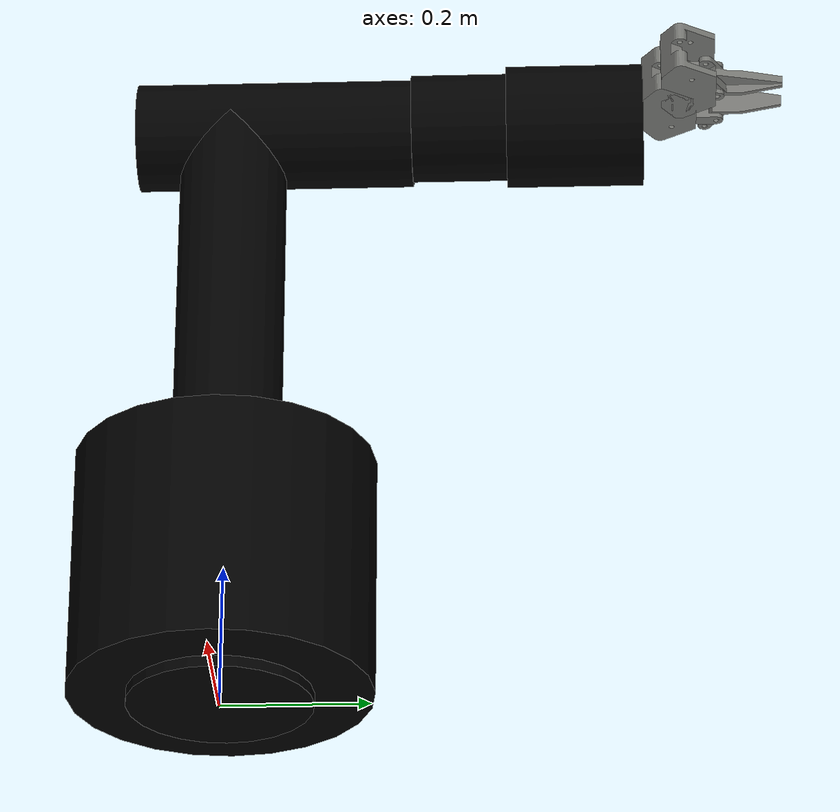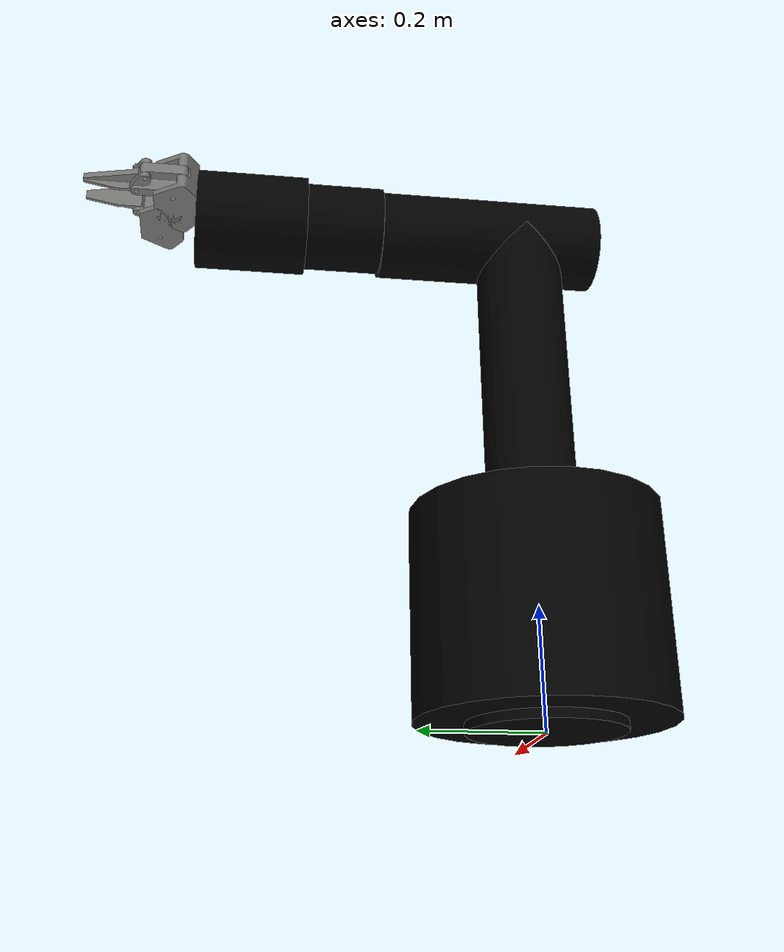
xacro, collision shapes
<?xml version="1.0"?>
<robot name="grips" xmlns:xacro="http://www.ros.org/wiki/xacro">

  <!-- Import common macros-->
  <xacro:include filename="$(find grips_description)/urdf/common.xacro" />
  <!-- Import materials for rviz-->
  <xacro:include filename="$(find grips_description)/urdf/materials.xacro" />
  <!-- Import robot without gripper -->
  <xacro:include filename="$(find grips_description)/urdf/serial_arm.xacro" />
  <!-- Import simple gripper -->
  <xacro:include filename="$(find grips_description)/urdf/jaw_gripper.xacro" />

  <!-- Create the grips robot -->
  <link name="world" />
  <serial_arm parent="world"/>

  <simple_gripper name="" parent="end_effector"/>

  <!-- ros_control plugin  -->
  <gazebo>
    <plugin name="ros_control" filename="libgazebo_ros_control.so"/>
  </gazebo>

</robot>

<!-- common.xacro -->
<robot xmlns:xacro="http://www.ros.org/wiki/xacro">
  <!-- Auxiliar Values -->
  <property name="pi" value="3.1415926535897931" />
  <property name="gripper_effort" value="200" />
  <property name="gripper_velocity" value="15" />
  <property name="max_effort" value="400" />
  <property name="max_velocity" value="5" />

  <!-- Macros -->
  <macro name="cylinder_collision" params="radius length">
    <collision>
      <origin xyz="0 0 ${length/2}" rpy="0 0 0"/>
      <geometry>
        <cylinder radius="${radius}" length="${length}"/>
      </geometry>
    </collision>
  </macro>
  <macro name="cylinder_inertia" params="mass radius length">
    <inertial>
      <origin xyz="0 0 ${length/2}" rpy="0 0 0" />
      <mass value="${mass}" />
      <inertia  ixx="${mass*radius^2 / 4  + mass*length^2 / 12}" ixy="0.0"  ixz="0.0"
                iyy="${mass*radius^2 / 4  + mass*length^2 / 12}" iyz="0.0"
                izz="${mass*radius^2 / 2}" />
    </inertial>
  </macro>
  <!-- Link Macro -->
  <macro name="create_link" params="name color mesh *collision *inertial">
    <link name="${name}">
      <visual>
        <geometry>
          <mesh filename="${mesh}" />
        </geometry>
        <material name="${color}" />
      </visual>
      <xacro:insert_block name="collision" />
      <xacro:insert_block name="inertial" />
    </link>
  </macro>
  <!-- A smaller dummy link makes the model to explode in Gazebo -->
  <macro name="dummy_link" params="name">
    <link name="${name}">
      <visual>
        <geometry>
          <sphere radius="0.01"/>
        </geometry>
        <material name="blue" />
      </visual>
      <collision>
        <geometry>
          <sphere radius="0.01"/>
        </geometry>
      </collision>
      <cylinder_inertia radius="0.01" length="0.02" mass="0.05"/>
    </link>
  </macro>
  <!-- Transmission Macro -->
  <macro name="simple_transmission" params="joint">
    <transmission name="${joint}_tran" type="transmission_interface/SimpleTransmission">
      <type>transmission_interface/SimpleTransmission</type>
      <joint name="${joint}"/>
      <actuator name="${joint}_motor">
        <hardwareInterface>EffortJointInterface</hardwareInterface>
        <mechanicalReduction>1</mechanicalReduction>
      </actuator>
      <mechanicalReduction>1</mechanicalReduction>
    </transmission>
  </macro>
</robot>

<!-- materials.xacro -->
<robot>

  <material name="black">
    <color rgba="0.0 0.0 0.0 1.0" />
  </material>

  <material name="blue">
    <color rgba="0.0 0.0 0.8 1.0" />
  </material>

  <material name="green">
    <color rgba="0.0 0.8 0.0 1.0" />
  </material>

  <material name="grey">
    <color rgba="0.2 0.2 0.2 1.0" />
  </material>

  <material name="orange">
    <color rgba="${255/255} ${108/255} ${10/255} 1.0" />
  </material>

  <material name="brown">
    <color rgba="${222/255} ${207/255} ${195/255} 1.0" />
  </material>

  <material name="red">
    <color rgba="0.8 0.0 0.0 1.0" />
  </material>

  <material name="white">
    <color rgba="1.0 1.0 1.0 1.0" />
  </material>

  <material name="metal_seamed">
    <color rgba="0.4627450980392157 0.4666666666666667 0.4509803921568628 1.0" />
  </material>

</robot>

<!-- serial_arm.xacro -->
<robot xmlns:xacro="http://www.ros.org/wiki/xacro">
  <!-- Dimensions -->
  <property name="base_radius" value="0.125" />
  <property name="base_length" value="15.24e-3" />
  <property name="manifold_radius" value="0.205" />
  <property name="manifold_length" value="0.33812" />
  <property name="upper_arm_radius" value="0.075" />
  <property name="upper_arm_length" value="0.52167" />
  <property name="forearm_radius" value="0.075" />
  <property name="forearm_length" value="0.385078" />
  <property name="pitch_radius" value="0.075" />
  <property name="pitch_length" value="0.133223" />
  <property name="yaw_radius" value="0.085" />
  <property name="yaw_length" value="0.190892" />
  <!-- Link Masses -->
  <property name="base_mass" value="1.208" />
  <property name="manifold_mass" value="41.111" />
  <property name="upper_arm_mass" value="3.592" />
  <property name="elbow_pivot_mass" value="0.72" />
  <property name="coupling_mass" value="0.446" />
  <property name="forearm_mass" value="4.935" />
  <property name="pitch_mass" value="0.679" />
  <property name="yaw_mass" value="4.689" />
  <property name="camera_mass" value="0.869" />
  <!-- Meshes -->
  <property name="base_mesh" value="package://grips_description/meshes/visual/base.dae" />
  <property name="manifold_mesh" value="package://grips_description/meshes/visual/manifold.dae" />
  <property name="upper_arm_mesh" value="package://grips_description/meshes/visual/upper_arm.dae" />
  <property name="elbow_pivot_mesh" value="package://grips_description/meshes/visual/elbow_pivot.dae" />
  <property name="coupling_mesh" value="package://grips_description/meshes/visual/coupling.dae" />
  <property name="forearm_mesh" value="package://grips_description/meshes/visual/forearm.dae" />
  <property name="pitch_mesh" value="package://grips_description/meshes/visual/pitch.dae" />
  <property name="yaw_mesh" value="package://grips_description/meshes/visual/yaw.dae" />
  <property name="camera_mesh" value="package://grips_description/meshes/visual/camera.dae" />
  <!-- Joints Dynamics -->
  <property name="SA_damping" value="5" />
  <property name="SE_damping" value="5" />
  <property name="linkage_damping" value="0.5" />
  <property name="linkage_friction" value="0.5" />
  <property name="WP_damping" value="5" />
  <property name="WY_damping" value="5" />
  <property name="WR_damping" value="0.5" />

  <macro name="serial_arm" params="parent">
    <create_link name="base_link" color="black" mesh="${base_mesh}" >
      <cylinder_collision radius="${base_radius}" length="${base_length}" />
      <cylinder_inertia radius="${base_radius}" length="${base_length}" mass="${base_mass}"/>
    </create_link>

    <create_link name="manifold" color="black" mesh="${manifold_mesh}" >
      <cylinder_collision radius="${manifold_radius}" length="${manifold_length}" />
      <cylinder_inertia radius="${manifold_radius}" length="${manifold_length}" mass="${manifold_mass}"/>
    </create_link>

    <create_link name="upper_arm" color="black" mesh="${upper_arm_mesh}" >
      <cylinder_collision radius="${upper_arm_radius}" length="${upper_arm_length}" />
      <cylinder_inertia radius="${upper_arm_radius}" length="${upper_arm_length}" mass="${upper_arm_mass}"/>
    </create_link>

    <create_link name="forearm" color="black" mesh="${forearm_mesh}" >
      <collision>
        <origin xyz="0 ${forearm_length/2 - 0.1234} 0" rpy="${pi/2} 0 0"/>
        <geometry>
          <cylinder radius="${forearm_radius}" length="${forearm_length}"/>
        </geometry>
      </collision>
      <inertial>
        <origin xyz="0 ${forearm_length/2 - 0.1234} 0" rpy="0 0 0"/>
        <mass value="${forearm_mass}" />
        <inertia  ixx="${forearm_mass*forearm_radius^2 / 4  + forearm_mass*forearm_length^2 / 12}" ixy="0.0"  ixz="0.0"
                  iyy="${forearm_mass*forearm_radius^2 / 2}" iyz="0.0"
                  izz="${forearm_mass*forearm_radius^2 / 4  + forearm_mass*forearm_length^2 / 12}" />
      </inertial>
    </create_link>
    <create_link name="pitch" color="black" mesh="${pitch_mesh}" >
      <collision>
        <origin xyz="0 ${pitch_length/2} 0" rpy="${pi/2} 0 0"/>
        <geometry>
          <cylinder radius="${pitch_radius}" length="${pitch_length}"/>
        </geometry>
      </collision>
      <inertial>
        <origin xyz="0 ${pitch_length/2} 0" rpy="0 0 0"/>
        <mass value="${pitch_mass}" />
        <inertia  ixx="${pitch_mass*pitch_radius^2 / 4  + pitch_mass*pitch_length^2 / 12}" ixy="0.0"  ixz="0.0"
                  iyy="${pitch_mass*pitch_radius^2 / 2}" iyz="0.0"
                  izz="${pitch_mass*pitch_radius^2 / 4  + pitch_mass*pitch_length^2 / 12}" />
      </inertial>
    </create_link>
    <create_link name="yaw" color="black" mesh="${yaw_mesh}" >
      <collision>
        <origin xyz="0 ${yaw_length/2} 0" rpy="${pi/2} 0 0"/>
        <geometry>
          <cylinder radius="${yaw_radius}" length="${yaw_length}"/>
        </geometry>
      </collision>
      <inertial>
        <origin xyz="0 ${yaw_length/2} 0" rpy="0 0 0"/>
        <mass value="${yaw_mass}" />
        <inertia  ixx="${yaw_mass*yaw_radius^2 / 4  + yaw_mass*yaw_length^2 / 12}" ixy="0.0"  ixz="0.0"
                  iyy="${yaw_mass*yaw_radius^2 / 2}" iyz="0.0"
                  izz="${yaw_mass*yaw_radius^2 / 4  + yaw_mass*yaw_length^2 / 12}" />
      </inertial>
    </create_link>

    <!-- This dummy link is needed for coupling hands to the robot -->
    <dummy_link name="end_effector" />

    <!-- Joints -->
    <joint name="anchor" type="fixed">
      <origin xyz="0 0 0.001" rpy="0 0 0" />
      <parent link="${parent}" />
      <child link="base_link" />
    </joint>
    <joint name="SA" type="revolute">
      <child link="manifold" />
      <parent link="base_link" />
      <axis xyz="0 0 1" />
      <origin xyz="0 0 ${base_length}" rpy="0 0 0" />
      <limit lower="${-pi/2}" upper="${pi/2}" effort="${max_effort}" velocity="${80*pi/180}" />
      <dynamics damping="${SA_damping}"/>
    </joint>
    <joint name="SE" type="revolute">
      <child link="upper_arm" />
      <parent link="manifold" />
      <axis xyz="1 0 0" />
      <origin xyz="0 0 ${manifold_length}" rpy="0 0 0" />
      <limit lower="${-pi/2}" upper="${pi/6}" effort="${max_effort}" velocity="${65*pi/180}" />
      <dynamics damping="${SE_damping}" friction="10"/>
    </joint>
    <joint name="linkage_tr" type="revolute">
      <child link="forearm" />
      <parent link="upper_arm" />
      <axis xyz="1 0 0" />
      <origin xyz="0 -9.82e-3 ${upper_arm_length}" rpy="0 0 0" />
      <limit lower="${-40*pi/180}" upper="${70*pi/180}" effort="${max_effort}" velocity="${50*pi/180}" />
      <dynamics damping="10"/>
    </joint>
    <joint name="WP" type="revolute">
      <child link="pitch" />
      <parent link="forearm" />
      <axis xyz="1 0 0" />
      <origin xyz="0 0.26109 7.5e-3" rpy="0 0 0" />
      <limit lower="${-35*pi/180}" upper="${65*pi/180}" effort="${max_effort}" velocity="${100*pi/180}" />
      <dynamics damping="${WP_damping}"/>
    </joint>
    <joint name="WY" type="revolute">
      <child link="yaw" />
      <parent link="pitch" />
      <axis xyz="0 0 1" />
      <origin xyz="0 ${pitch_length} 0" rpy="0 0 0" />
      <limit lower="${-39*pi/180}" upper="${66*pi/180}" effort="${max_effort}" velocity="${115*pi/180}" />
      <dynamics damping="${WY_damping}"/>
    </joint>
    <joint name="WR" type="continuous">
      <child link="end_effector" />
      <parent link="yaw" />
      <axis xyz="0 1 0" />
      <origin xyz="-0.787e-3 ${yaw_length} 0.051331" rpy="0 0 0" />
      <limit lower="${-100*pi/180}" upper="${100*pi/180}" effort="${max_effort}" velocity="${200*pi/180}" />
      <dynamics damping="${WR_damping}"/>
    </joint>

    <!-- Transmissions -->
    <simple_transmission joint="SA" />
    <simple_transmission joint="SE" />
    <simple_transmission joint="linkage_tr" />
    <simple_transmission joint="WP" />
    <simple_transmission joint="WY" />
    <simple_transmission joint="WR" />

    <gazebo reference="base_link">
      <material>Telerobcar/MetalSeamed</material>
      <selfCollide>false</selfCollide>
    </gazebo>
    <gazebo reference="manifold">
      <material>Telerobcar/MetalSeamed</material>
      <selfCollide>false</selfCollide>
    </gazebo>
    <gazebo reference="upper_arm">
      <material>Telerobcar/MetalSeamed</material>
      <selfCollide>false</selfCollide>
    </gazebo>
    <gazebo reference="forearm">
      <material>Telerobcar/MetalSeamed</material>
      <selfCollide>false</selfCollide>
    </gazebo>
    <gazebo reference="pitch">
      <material>Telerobcar/MetalSeamed</material>
      <selfCollide>false</selfCollide>
    </gazebo>
    <gazebo reference="yaw">
      <material>Telerobcar/MetalSeamed</material>
      <selfCollide>false</selfCollide>
    </gazebo>
    <gazebo reference="end_effector">
      <selfCollide>false</selfCollide>
    </gazebo>
  </macro>
</robot>

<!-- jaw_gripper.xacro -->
<robot xmlns:xacro="http://www.ros.org/wiki/xacro">
  <!-- Links Mass -->
  <property name="gripper_base_mass" value="0.923" />
  <property name="outer_mass" value="0.091" />
  <property name="inner_mass" value="0.194" />
  <property name="finger_mass" value="0.174" />
  <!-- Links COG -->
  <property name="gripper_base_cog" value="0 26.28e-3 0" />
  <property name="outer_cog" value="0 31.725e-3 0" />
  <property name="r_inner_cog" value="-0.316e-3 23.873e-3 0" />
  <property name="l_inner_cog" value="0.316e-3 23.873e-3 0" />
  <property name="r_finger_cog" value="3.441e-3 20.353e-3 0" />
  <property name="l_finger_cog" value="-3.441e-3 20.353e-3 0" />

  <!-- Meshes -->
  <property name="gripper_base_mesh" value="package://grips_description/meshes/visual/gripper_base.dae" />
  <property name="outer_mesh" value="package://grips_description/meshes/visual/outer_pivot.dae" />
  <property name="r_inner_mesh" value="package://grips_description/meshes/visual/r_inner_pivot.dae" />
  <property name="l_inner_mesh" value="package://grips_description/meshes/visual/l_inner_pivot.dae" />
  <property name="r_finger_mesh" value="package://grips_description/meshes/visual/r_finger.dae" />
  <property name="l_finger_mesh" value="package://grips_description/meshes/visual/l_finger.dae" />
  <!-- Joints Dynamics -->
  <property name="outer_damping" value="0.1" />
  <property name="inner_damping" value="0.1" />
  <property name="finger_damping" value="0.1" />
  <property name="inner_friction" value="0" />
  <property name="outer_friction" value="0" />
  <property name="finger_friction" value="0" />

  <!-- Links Inertia -->
  <macro name="gripper_base_inertia">
    <inertia ixx="9.67e-4" ixy="0.0" ixz="0.0" iyy="0.002" iyz="0.0"
      izz="0.002" />
  </macro>
  <macro name="outer_inertia">
    <inertia ixx="4.664e-5" ixy="0.0" ixz="0.0" iyy="5.519e-6"
      iyz="0.0" izz="4.682e-5" />
  </macro>
  <macro name="r_inner_inertia">
    <inertia ixx="1.179e-4" ixy="1.347e-6" ixz="0.0" iyy="5.647e-5"
      iyz="0.0" izz="7.353e-5" />
  </macro>
  <macro name="l_inner_inertia">
    <inertia ixx="1.179e-4" ixy="-1.347e-6" ixz="0.0" iyy="5.647e-5"
      iyz="0.0" izz="7.353e-5" />
  </macro>
  <macro name="r_finger_inertia">
    <inertia ixx="1.65e-4" ixy="3.16e-5" ixz="0.0" iyy="3.595e-5"
      iyz="0.0" izz="1.701e-4" />
  </macro>
  <macro name="l_finger_inertia">
    <inertia ixx="1.65e-4" ixy="-3.16e-5" ixz="0.0" iyy="3.595e-5"
      iyz="0.0" izz="1.701e-4" />
  </macro>

  <macro name="simple_gripper" params="name parent">
    <!-- base link -->
    <create_link name="${name}gripper_base" color="metal_seamed" mesh="${gripper_base_mesh}">
      <collision>
        <geometry>
          <mesh filename="${gripper_base_mesh}" />
        </geometry>
      </collision>
      <inertial>
        <origin xyz="${gripper_base_cog}" rpy="0 0 0" />
        <mass value="${gripper_base_mass}" />
        <gripper_base_inertia />
      </inertial>
    </create_link>
    <!-- outer links -->
    <create_link name="${name}r_outer" color="metal_seamed" mesh="${outer_mesh}">
      <collision>
        <geometry>
          <mesh filename="${gripper_base_mesh}" />
        </geometry>
      </collision>
      <inertial>
        <origin xyz="${outer_cog}" rpy="0 0 0" />
        <mass value="${outer_mass}" />
        <outer_inertia />
      </inertial>
    </create_link>
    <create_link name="${name}l_outer" color="metal_seamed" mesh="${outer_mesh}">
      <collision>
        <geometry>
          <mesh filename="${outer_mesh}" />
        </geometry>
      </collision>
      <inertial>
        <origin xyz="${outer_cog}" rpy="0 0 0" />
        <mass value="${outer_mass}" />
        <outer_inertia />
      </inertial>
    </create_link>
    <!-- inner links -->
    <create_link name="${name}r_inner" color="metal_seamed" mesh="${r_inner_mesh}">
      <collision>
        <geometry>
          <mesh filename="${r_inner_mesh}" />
        </geometry>
      </collision>
      <inertial>
        <origin xyz="${r_inner_cog}" rpy="0 0 0" />
        <mass value="${inner_mass}" />
        <r_inner_inertia />
      </inertial>
    </create_link>
    <create_link name="${name}l_inner" color="metal_seamed" mesh="${l_inner_mesh}">
      <collision>
        <geometry>
          <mesh filename="${l_inner_mesh}" />
        </geometry>
      </collision>
      <inertial>
        <origin xyz="${l_inner_cog}" rpy="0 0 0" />
        <mass value="${inner_mass}" />
        <l_inner_inertia />
      </inertial>
    </create_link>
    <!-- finger links -->
    <create_link name="${name}r_finger" color="metal_seamed" mesh="${r_finger_mesh}">
      <collision>
        <geometry>
          <mesh filename="${r_finger_mesh}" />
        </geometry>
      </collision>
      <inertial>
        <origin xyz="${r_finger_cog}" rpy="0 0 0" />
        <mass value="${finger_mass}" />
        <r_finger_inertia />
      </inertial>
    </create_link>
    <create_link name="${name}l_finger" color="metal_seamed" mesh="${l_finger_mesh}">
      <collision>
        <geometry>
          <mesh filename="${l_finger_mesh}" />
        </geometry>
      </collision>
      <inertial>
        <origin xyz="${l_finger_cog}" rpy="0 0 0" />
        <mass value="${finger_mass}" />
        <l_finger_inertia />
      </inertial>
    </create_link>

    <!-- joints -->
    <joint name="gripper_base_joint" type="fixed">
      <origin xyz="0 0 0" rpy="0 0 0" />
      <parent link="${parent}" />
      <child link="${name}gripper_base" />
    </joint>

    <joint name="${name}r_inner" type="revolute">
      <child link="${name}r_inner" />
      <parent link="${name}gripper_base" />
      <axis xyz="0 0 1" />
      <origin xyz="31.737e-3 42.19e-3 0" rpy="0 0 0" />
      <limit lower="-1.43" upper="0.4" effort="${gripper_effort}" velocity="${gripper_velocity}" />
      <dynamics damping="${inner_damping}" />
    </joint>
    <joint name="${name}l_inner" type="revolute">
      <child link="${name}l_inner" />
      <parent link="${name}gripper_base" />
      <axis xyz="0 0 1" />
      <origin xyz="-31.737e-3 42.19e-3 0" rpy="0 0 0" />
      <limit lower="-0.4" upper="1.43" effort="${gripper_effort}" velocity="${gripper_velocity}" />
      <dynamics damping="${inner_damping}" />
    </joint>

    <joint name="${name}r_outer" type="revolute">
      <child link="${name}r_outer" />
      <parent link="${name}gripper_base" />
      <axis xyz="0 0 1" />
      <origin xyz="58.93e-3 26.49e-3 0" rpy="0 0 0" />
      <limit lower="-1.43" upper="0.4" effort="${gripper_effort}" velocity="${gripper_velocity}" />
      <dynamics damping="${outer_damping}" />
    </joint>
    <joint name="${name}l_outer" type="revolute">
      <child link="${name}l_outer" />
      <parent link="${name}gripper_base" />
      <axis xyz="0 0 1" />
      <origin xyz="-58.93e-3 26.49e-3 0" rpy="0 0 0" />
      <limit lower="-0.4" upper="1.43" effort="${gripper_effort}" velocity="${gripper_velocity}" />
      <dynamics damping="${outer_damping}" />
    </joint>

    <joint name="${name}r_finger" type="revolute">
      <child link="${name}r_finger" />
      <parent link="${name}r_inner" />
      <axis xyz="0 0 1" />
      <origin xyz="0 63.45e-3 0" rpy="0 0 0" />
      <limit lower="${-pi/2}" upper="${pi/2}" effort="${gripper_effort}" velocity="${gripper_velocity}" />
      <dynamics damping="${finger_damping}" />
    </joint>
    <joint name="${name}l_finger" type="revolute">
      <child link="${name}l_finger" />
      <parent link="${name}l_inner" />
      <axis xyz="0 0 1" />
      <origin xyz="0 63.45e-3 0" rpy="0 0 0" />
      <limit lower="${-pi/2}" upper="${pi/2}" effort="${gripper_effort}" velocity="${gripper_velocity}" />
      <dynamics damping="${finger_damping}" />
    </joint>

    <!-- transmissions -->
    <simple_transmission joint="${name}r_outer" />
    <simple_transmission joint="${name}l_outer" />
    <simple_transmission joint="${name}r_inner" />
    <simple_transmission joint="${name}l_inner" />
    <simple_transmission joint="${name}r_finger" />
    <simple_transmission joint="${name}l_finger" />

    <!-- links -->
    <gazebo reference="${name}gripper_base">
      <material>Telerobcar/MetalSeamed</material>
      <selfCollide>false</selfCollide>
    </gazebo>
    <gazebo reference="${name}r_outer">
      <material>Telerobcar/MetalSeamed</material>
      <selfCollide>false</selfCollide>
    </gazebo>
    <gazebo reference="${name}l_outer">
      <material>Telerobcar/MetalSeamed</material>
      <selfCollide>false</selfCollide>
    </gazebo>
    <gazebo reference="${name}r_inner">
      <material>Telerobcar/MetalSeamed</material>
      <selfCollide>false</selfCollide>
    </gazebo>
    <gazebo reference="${name}l_inner">
      <material>Telerobcar/MetalSeamed</material>
      <selfCollide>false</selfCollide>
    </gazebo>
    <gazebo reference="${name}r_finger">
      <material>Telerobcar/MetalSeamed</material>
      <selfCollide>false</selfCollide>
      <mu1>1.1</mu1>
      <mu2>1.1</mu2>
      <fdir1>0 0 1</fdir1>
      <kp>1000000.0</kp>
      <kd>10.0</kd>
      <maxVel>0.1</maxVel>
      <minDepth>0.001</minDepth>
      <maxContacts>5</maxContacts>
    </gazebo>
    <gazebo reference="${name}l_finger">
      <material>Telerobcar/MetalSeamed</material>
      <selfCollide>false</selfCollide>
      <mu1>1.1</mu1>
      <mu2>1.1</mu2>
      <fdir1>0 0 1</fdir1>
      <kp>1000000.0</kp>
      <kd>100.0</kd>
      <maxVel>0.1</maxVel>
      <minDepth>0.001</minDepth>
      <maxContacts>5</maxContacts>
    </gazebo>
    <gazebo>
      <gripper name="${name}grasping">
        <grasp_check>
          <attach_steps>1</attach_steps>    <!-- default: 20 -->
          <detach_steps>1</detach_steps>    <!-- default: 40 -->
          <min_contact_count>2</min_contact_count>
        </grasp_check>
        <gripper_link>${name}r_finger</gripper_link>
        <gripper_link>${name}l_finger</gripper_link>
        <palm_link>${name}gripper_base</palm_link>
      </gripper>
    </gazebo>
  </macro>
</robot>
